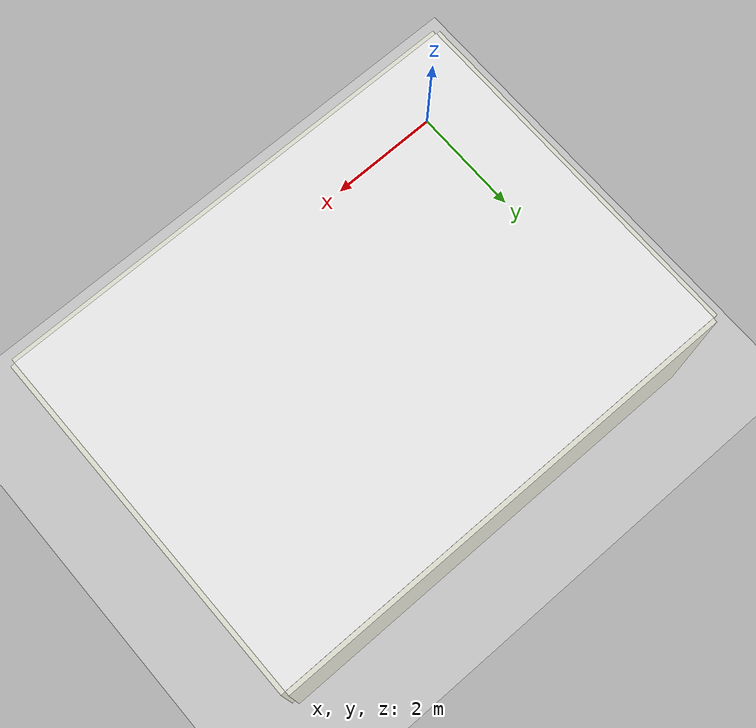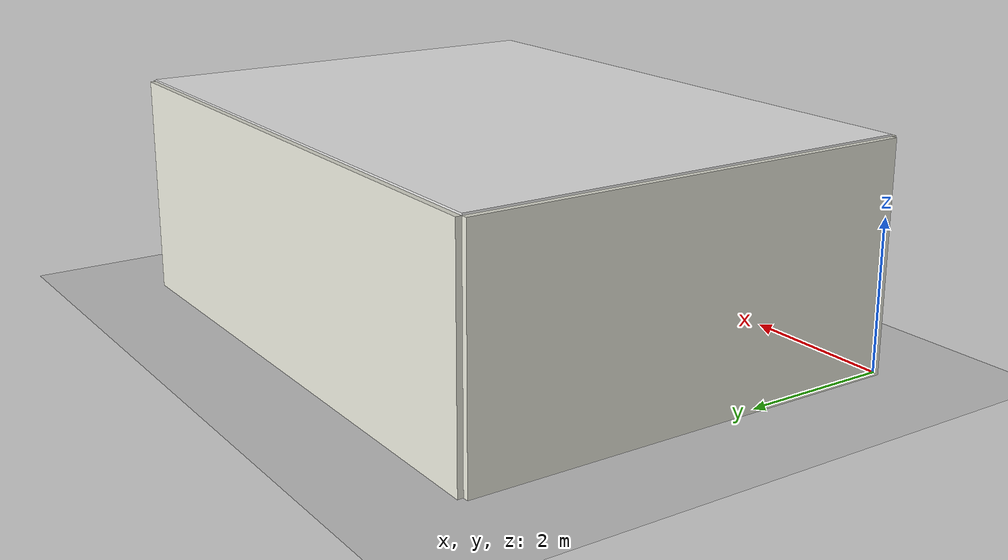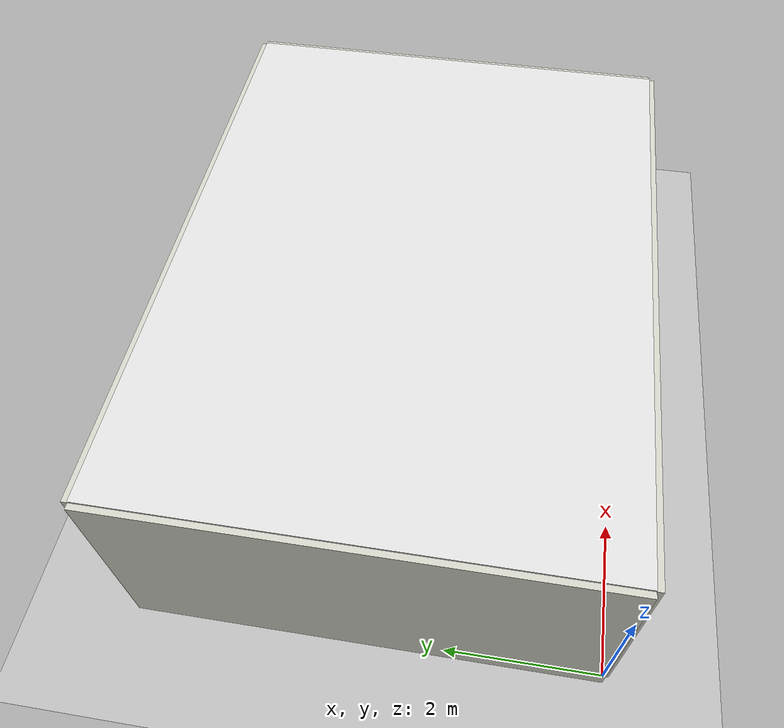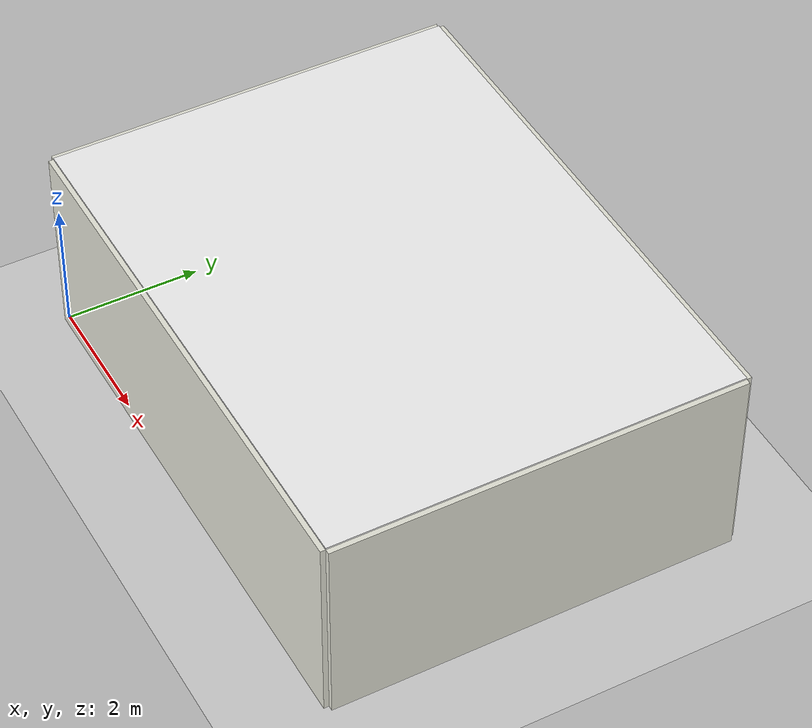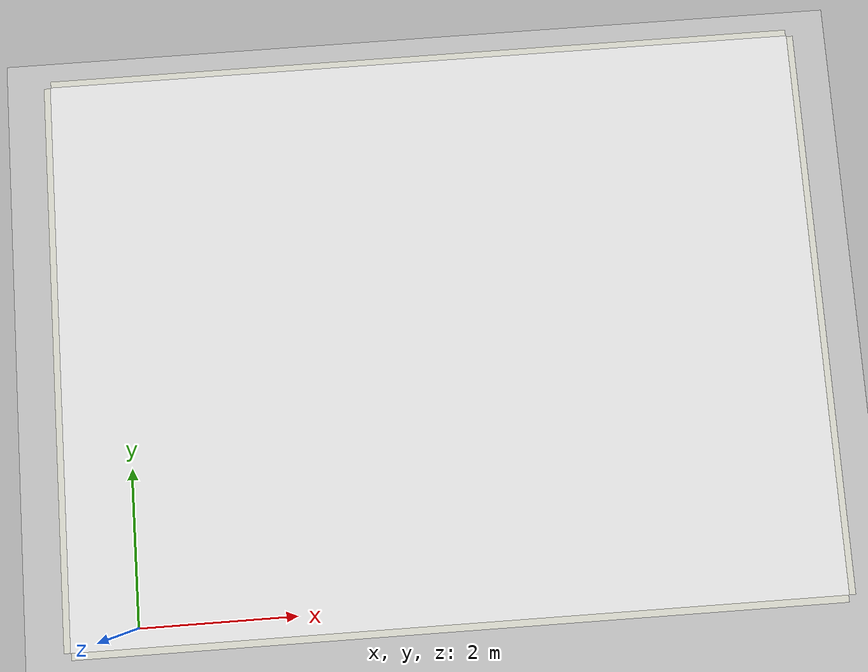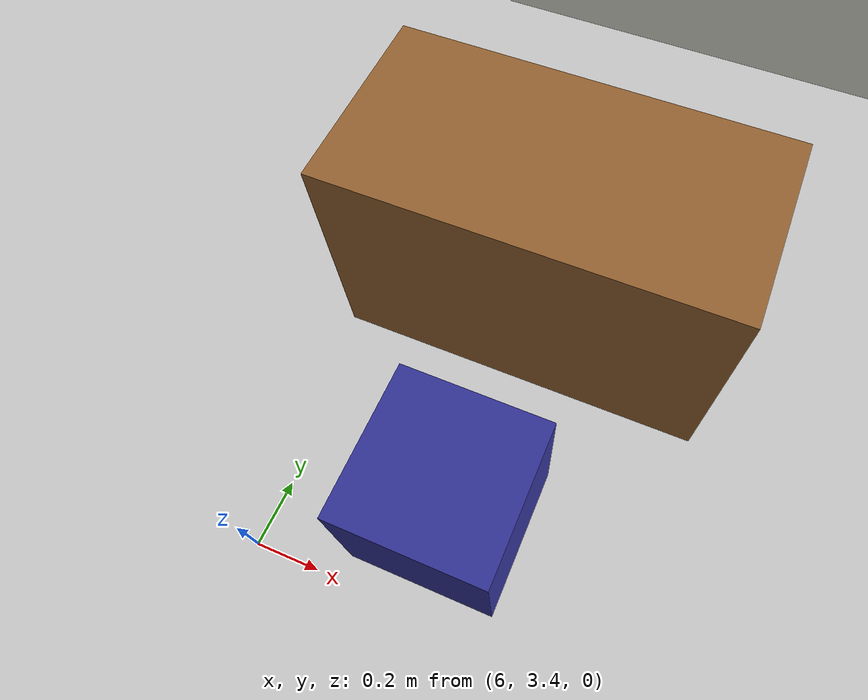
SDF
<?xml version="1.0" ?>
<sdf version="1.9">
  <world name="omnisight_indoor">

    <!-- ── Physics ─────────────────────────────────────────── -->
    <physics name="1ms" type="ignored">
      <max_step_size>0.001</max_step_size>
      <real_time_factor>1.0</real_time_factor>
      <real_time_update_rate>1000</real_time_update_rate>
    </physics>

    <!-- ── Required plugins ───────────────────────────────── -->
    <plugin filename="ignition-gazebo-physics-system"
            name="ignition::gazebo::systems::Physics"/>
    <plugin filename="ignition-gazebo-user-commands-system"
            name="ignition::gazebo::systems::UserCommands"/>
    <plugin filename="ignition-gazebo-scene-broadcaster-system"
            name="ignition::gazebo::systems::SceneBroadcaster"/>
    <plugin filename="ignition-gazebo-sensors-system"
            name="ignition::gazebo::systems::Sensors">
      <render_engine>ogre2</render_engine>
    </plugin>
    <plugin filename="ignition-gazebo-imu-system"
            name="ignition::gazebo::systems::Imu"/>
    <plugin filename="ignition-gazebo-contact-system"
            name="ignition::gazebo::systems::Contact"/>

    <!-- ── Lighting ──────────────────────────────────────── -->
    <light type="directional" name="sun">
      <cast_shadows>true</cast_shadows>
      <pose>0 0 10 0 0 0</pose>
      <diffuse>0.9 0.9 0.9 1</diffuse>
      <specular>0.3 0.3 0.3 1</specular>
      <direction>-0.5 0.1 -0.9</direction>
    </light>

    <light type="point" name="room_light_1">
      <pose>2 1.5 2.8 0 0 0</pose>
      <diffuse>0.8 0.8 0.8 1</diffuse>
      <specular>0.1 0.1 0.1 1</specular>
      <attenuation>
        <range>8</range>
        <linear>0.1</linear>
        <constant>0.9</constant>
        <quadratic>0.001</quadratic>
      </attenuation>
      <cast_shadows>false</cast_shadows>
    </light>

    <light type="point" name="room_light_2">
      <pose>5 4 2.8 0 0 0</pose>
      <diffuse>0.8 0.8 0.8 1</diffuse>
      <specular>0.1 0.1 0.1 1</specular>
      <attenuation>
        <range>8</range>
        <linear>0.1</linear>
        <constant>0.9</constant>
        <quadratic>0.001</quadratic>
      </attenuation>
      <cast_shadows>false</cast_shadows>
    </light>

    <!-- ── Ground plane ──────────────────────────────────── -->
    <model name="ground_plane">
      <static>true</static>
      <link name="link">
        <collision name="collision">
          <geometry><plane><normal>0 0 1</normal><size>20 20</size></plane></geometry>
        </collision>
        <visual name="visual">
          <geometry><plane><normal>0 0 1</normal><size>20 20</size></plane></geometry>
          <material>
            <ambient>0.8 0.8 0.8 1</ambient>
            <diffuse>0.8 0.8 0.8 1</diffuse>
          </material>
        </visual>
      </link>
    </model>

    <!-- South wall (y=0) -->
    <model name="wall_south">
      <static>true</static>
      <pose>4 0 1.5 0 0 0</pose>
      <link name="link">
        <collision name="c"><geometry><box><size>8 0.15 3</size></box></geometry></collision>
        <visual name="v">
          <geometry><box><size>8 0.15 3</size></box></geometry>
          <material><ambient>0.9 0.9 0.85 1</ambient><diffuse>0.9 0.9 0.85 1</diffuse></material>
        </visual>
      </link>
    </model>

    <!-- North wall (y=6) -->
    <model name="wall_north">
      <static>true</static>
      <pose>4 6 1.5 0 0 0</pose>
      <link name="link">
        <collision name="c"><geometry><box><size>8 0.15 3</size></box></geometry></collision>
        <visual name="v">
          <geometry><box><size>8 0.15 3</size></box></geometry>
          <material><ambient>0.9 0.9 0.85 1</ambient><diffuse>0.9 0.9 0.85 1</diffuse></material>
        </visual>
      </link>
    </model>

    <!-- West wall (x=0) -->
    <model name="wall_west">
      <static>true</static>
      <pose>0 3 1.5 0 0 0</pose>
      <link name="link">
        <collision name="c"><geometry><box><size>0.15 6 3</size></box></geometry></collision>
        <visual name="v">
          <geometry><box><size>0.15 6 3</size></box></geometry>
          <material><ambient>0.9 0.9 0.85 1</ambient><diffuse>0.9 0.9 0.85 1</diffuse></material>
        </visual>
      </link>
    </model>

    <!-- East wall (x=8) -->
    <model name="wall_east">
      <static>true</static>
      <pose>8 3 1.5 0 0 0</pose>
      <link name="link">
        <collision name="c"><geometry><box><size>0.15 6 3</size></box></geometry></collision>
        <visual name="v">
          <geometry><box><size>0.15 6 3</size></box></geometry>
          <material><ambient>0.9 0.9 0.85 1</ambient><diffuse>0.9 0.9 0.85 1</diffuse></material>
        </visual>
      </link>
    </model>

    <!-- Ceiling -->
    <model name="ceiling">
      <static>true</static>
      <pose>4 3 3 0 0 0</pose>
      <link name="link">
        <visual name="v">
          <geometry><box><size>8 6 0.05</size></box></geometry>
          <material><ambient>0.95 0.95 0.95 1</ambient><diffuse>0.95 0.95 0.95 1</diffuse></material>
        </visual>
      </link>
    </model>

    <!-- ══════════════════════════════════════════════════════
         FURNITURE / OBSTACLES
         ══════════════════════════════════════════════════════ -->

    <!-- Desk 1 (northwest) -->
    <model name="desk_1">
      <static>true</static>
      <pose>1.5 4.5 0.375 0 0 0</pose>
      <link name="link">
        <collision name="c"><geometry><box><size>1.2 0.6 0.75</size></box></geometry></collision>
        <visual name="v">
          <geometry><box><size>1.2 0.6 0.75</size></box></geometry>
          <material><ambient>0.6 0.4 0.2 1</ambient><diffuse>0.6 0.4 0.2 1</diffuse></material>
        </visual>
      </link>
    </model>

    <!-- Desk 2 (northeast) -->
    <model name="desk_2">
      <static>true</static>
      <pose>6.5 4.5 0.375 0 0 0</pose>
      <link name="link">
        <collision name="c"><geometry><box><size>1.2 0.6 0.75</size></box></geometry></collision>
        <visual name="v">
          <geometry><box><size>1.2 0.6 0.75</size></box></geometry>
          <material><ambient>0.6 0.4 0.2 1</ambient><diffuse>0.6 0.4 0.2 1</diffuse></material>
        </visual>
      </link>
    </model>

    <!-- Chair 1 -->
    <model name="chair_1">
      <static>true</static>
      <pose>1.5 3.7 0.225 0 0 0</pose>
      <link name="link">
        <collision name="c"><geometry><box><size>0.45 0.45 0.45</size></box></geometry></collision>
        <visual name="v">
          <geometry><box><size>0.45 0.45 0.45</size></box></geometry>
          <material><ambient>0.2 0.2 0.6 1</ambient><diffuse>0.2 0.2 0.6 1</diffuse></material>
        </visual>
      </link>
    </model>

    <!-- Chair 2 -->
    <model name="chair_2">
      <static>true</static>
      <pose>6.5 3.7 0.225 0 0 0</pose>
      <link name="link">
        <collision name="c"><geometry><box><size>0.45 0.45 0.45</size></box></geometry></collision>
        <visual name="v">
          <geometry><box><size>0.45 0.45 0.45</size></box></geometry>
          <material><ambient>0.2 0.2 0.6 1</ambient><diffuse>0.2 0.2 0.6 1</diffuse></material>
        </visual>
      </link>
    </model>

    <!-- Bookshelf (south wall) -->
    <model name="bookshelf">
      <static>true</static>
      <pose>4 0.5 0.9 0 0 0</pose>
      <link name="link">
        <collision name="c"><geometry><box><size>1.5 0.3 1.8</size></box></geometry></collision>
        <visual name="v">
          <geometry><box><size>1.5 0.3 1.8</size></box></geometry>
          <material><ambient>0.5 0.3 0.1 1</ambient><diffuse>0.5 0.3 0.1 1</diffuse></material>
        </visual>
      </link>
    </model>

    <!-- Central table -->
    <model name="central_table">
      <static>true</static>
      <pose>4 3 0.375 0 0 0</pose>
      <link name="link">
        <collision name="c"><geometry><box><size>1.4 0.7 0.75</size></box></geometry></collision>
        <visual name="v">
          <geometry><box><size>1.4 0.7 0.75</size></box></geometry>
          <material><ambient>0.7 0.5 0.3 1</ambient><diffuse>0.7 0.5 0.3 1</diffuse></material>
        </visual>
      </link>
    </model>

    <!-- Pillar (obstacle for path planning testing) -->
    <model name="pillar">
      <static>true</static>
      <pose>2.5 2 0.9 0 0 0</pose>
      <link name="link">
        <collision name="c"><geometry><cylinder><radius>0.15</radius><length>1.8</length></cylinder></geometry></collision>
        <visual name="v">
          <geometry><cylinder><radius>0.15</radius><length>1.8</length></cylinder></geometry>
          <material><ambient>0.7 0.7 0.7 1</ambient><diffuse>0.7 0.7 0.7 1</diffuse></material>
        </visual>
      </link>
    </model>

    <!-- Small box obstacle (dynamic object placeholder) -->
    <model name="box_obstacle">
      <static>true</static>
      <pose>5.5 2 0.2 0 0 0</pose>
      <link name="link">
        <collision name="c"><geometry><box><size>0.4 0.4 0.4</size></box></geometry></collision>
        <visual name="v">
          <geometry><box><size>0.4 0.4 0.4</size></box></geometry>
          <material><ambient>0.8 0.2 0.2 1</ambient><diffuse>0.8 0.2 0.2 1</diffuse></material>
        </visual>
      </link>
    </model>

  </world>
</sdf>
